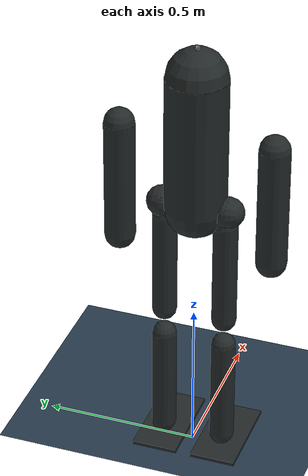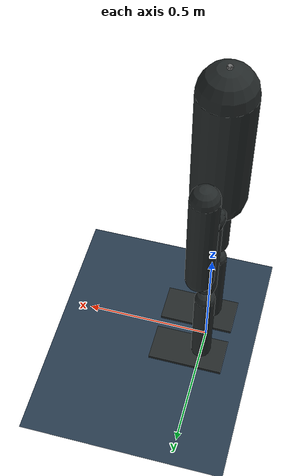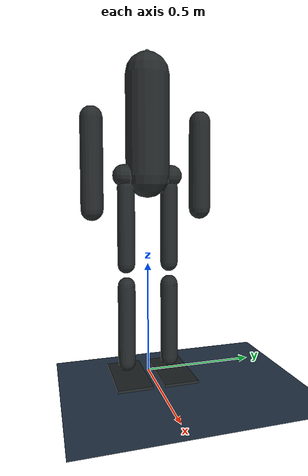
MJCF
<mujoco model="Humanoid">

	<compiler angle="radian" meshdir="../meshes" />
	<compiler inertiafromgeom = "false" angle = "radian" />
	<option timestep = "0.001" iterations = "50" tolerance = "1e-10" jacobian = "dense" cone = "pyramidal" gravity = "0.0 0.0 -9.8" solver = "Newton" impratio = "10" apirate = "144"/>
	<size nconmax = "1000" njmax = "1000" nuserdata="1000" nuser_actuator="34"/>

	<default>
		<joint limited = "true" stiffness = "1500" damping = "10" armature = "2.5"/>
		<motor ctrlrange = " -314.0 314.0" ctrllimited = "true" />
		<position kp = "15.0" />
	</default>

	<visual>
		<map force = "0.025" zfar = "30"/>
		<rgba haze = "0.15 0.25 0.35 1" com = "1.0 0.1 0.1 1"/>
		<quality shadowsize = "2048"/>
		<global offwidth = "800" offheight = "800" fovy = "45" linewidth = "0.1"/>
		<scale forcewidth = "0.05" contactwidth = "0.1" com = "0.2"/>
	</visual>

	<asset>
		<texture name = "texplane"   type = "2d" builtin = "checker" rgb1 = ".2 .3 .4" rgb2 = ".1 0.15 0.2" width = "512" height = "512" mark = "cross" markrgb = ".8 .8 .8" />
		<texture name = "texgeom" type = "cube" builtin = "flat" mark = "cross" width = "127" height = "1278" rgb1 = "0.8 0.6 0.4" rgb2 = "0.8 0.6 0.4" markrgb = "1 1 1" random = "0.01" />
		<material name = "matplane" reflectance = "0.3" texture = "texplane" texrepeat = "1 1" texuniform = "true" />
		<material name = "matgeom" texture = "texgeom" texuniform = "true" rgba = "0.8 0.6 .4 1" />
		<material name = "robots" shininess = "0.5" reflectance = "0.5" />
	</asset>

	<worldbody>
		<geom name = "floor" pos = "0 0 0" size = "0 0 .25" type = "plane" material = "matplane" solref = "0.02 0.0001" friction = "2.5 0.5 0.0001" condim = "3"/>

		<light directional = "false" diffuse = ".2 .2 .2" specular = "0 0 0" pos = "0 0 5" dir = "0 0 -1" castshadow = "false"/>
		<light mode = "targetbodycom" target = "trunk" directional = "false" diffuse = ".8 .8 .8" specular = "0.3 0.3 0.3" pos = "0 0 4.0" dir = "0 0 -1"/>

		<body name = "trunk" pos = "0 0 1.35000000">
			<inertial pos = "0 0 -0.25" mass = "24.56000000" diaginertia = "1.27690000 1.01810000 0.50336000"/>
			<freejoint name = "root"/>
			<geom name="trunk_goem" type="capsule" fromto="0 0 0 0 0 -0.45" size="0.1" rgba="0.14 0.16 0.16 1" material="robots" group="1" />
			<site name = "imu" size = "0.01" pos = "0 0 0.1"/>
			<site name = "imu_2" size = "0.01" pos = "0 0 0.1" euler = "-1.5708 0 0"/>
			<body name = "hip_right" pos = "0.00000000 -0.10000000 -0.45000000">
				<inertial pos = "0 0 0" mass = "1.00000000" diaginertia = "0.00889200 0.00802500 0.00802500"/>
				<joint name = "hip_right_x" type="hinge" pos = "0.00000000 0.00000000 0.00000000" axis = "-1 0 0" range = "-15.00000000 15.00000000"/>
				<geom name="RHipp_goem" type="capsule" fromto="0 0 0 0 -0.01 0" size="0.05" rgba="0.14 0.16 0.16 1" material="robots"  group="1" />
				<body name = "thigh_right" pos = "0.00000000 0.00000000 0.00000000">
					<inertial pos = "-0.00000000 -0.00000000 -0.21100000" mass = "3.32000000" diaginertia = "0.04289200 0.04802500 0.01078400"/>
					<joint name = "hip_right_y" type="hinge" pos = "0.00000000 0.00000000 0.00000000" axis = "0 -1 0" range = "-35.00000000 100.00000000"/>
					<geom name="Rthigh_goem" type="capsule" fromto="0 0 -0.05 0 0 -0.4" size="0.04" rgba="0.14 0.16 0.16 1" material="robots"  group="1" />
					<body name = "calf_right" pos = "0.00000000 0.00000000 -0.45000000">
						<inertial pos = "-0.00000000 -0.00000000 -0.23000000" mass = "3.30000000" diaginertia = "0.06232800 0.06266400 0.00459200"/>
						<joint name = "knee_right" type="hinge" pos = "0.00000000 0.00000000 0.00000000" axis = "0 -1 0" range = "-125.00000000 0.00000000"/>
						<geom name="Rcalf_goem" type="capsule" fromto="0 0 -0.05 0 0 -0.4" size="0.04" rgba="0.14 0.16 0.16 1" material="robots"  group="1" />
						<body name = "foot_right" pos = "0.00000000 0.00000000 -0.45000000">
							<inertial pos = "0.05 0 0" mass = "0.50000000" diaginertia = "0.00082700 0.00082700 0.00080000"/>
							<joint name = "ankle_right_y" type="hinge" pos = "-0.00000000 0.00000000 0.00000000" axis = "0 -1 0" range = "-60.00000000 56.00000000"/>
							<joint name = "ankle_right_x" type="hinge" pos = "-0.00000000 0.00000000 0.00000000" axis = "-1 0 0" range = "-15.00000000 15.00000000"/>
							<geom name = "foot_right_geom" pos = "0.05 0 0" type = "box" size = "0.1500000 0.0750000 0.01000000" rgba="0.14 0.16 0.16 1" material="robots"  group="1" />
							<site name="rf_force"  size="0.01" pos="0.0 0.0 0" />
						</body>
					</body>
				</body>
			</body>
			<body name = "hip_left" pos = "0.00000000 0.10000000 -0.45000000">
				<inertial pos = "0 0 0" mass = "1.00000000" diaginertia = "0.00889200 0.00802500 0.00802500"/>
				<joint name = "hip_left_x" type="hinge" pos = "0.00000000 0.00000000 0.00000000" axis = "-1 0 0" range = "-15.00000000 15.00000000"/>
				<geom name="LHipp_goem" type="capsule" fromto="0 0 0 0 0.01 0" size="0.05" rgba="0.14 0.16 0.16 1" material="robots"  group="1" />
				<body name = "thigh_left" pos = "0.00000000 0.00000000 0.00000000">
					<inertial pos = "-0.00000000 -0.00000000 -0.21100000" mass = "3.32000000" diaginertia = "0.04289200 0.04802500 0.01078400"/>
					<joint name = "hip_left_y" type="hinge" pos = "0.00000000 0.00000000 0.00000000" axis = "0 -1 0" range = "-35.00000000 100.00000000"/>
					<geom name="Lthigh_goem" type="capsule" fromto="0 0 -0.05 0 0 -0.4" size="0.04" rgba="0.14 0.16 0.16 1" material="robots"  group="1" />
					<body name = "calf_left" pos = "0.00000000 0.00000000 -0.45000000">
						<inertial pos = "-0.00000000 -0.00000000 -0.23000000" mass = "3.30000000" diaginertia = "0.06232800 0.06266400 0.00459200"/>
						<joint name = "knee_left" type="hinge" pos = "0.00000000 0.00000000 0.00000000" axis = "0 -1 0" range = "-125.00000000 0.00000000"/>
						<geom name="Lcalf_goem" type="capsule" fromto="0 0 -0.05 0 0 -0.4" size="0.04" rgba="0.14 0.16 0.16 1" material="robots"  group="1" />
						<body name = "foot_left" pos = "0.00000000 0.00000000 -0.45000000">
							<inertial pos = "0.05 0 0" mass = "0.50000000" diaginertia = "0.00082700 0.00082700 0.00080000"/>
							<joint name = "ankle_left_y" type="hinge" pos = "-0.00000000 0.00000000 0.00000000" axis = "0 -1 0" range = "-60.00000000 56.00000000"/>
							<joint name = "ankle_left_x" type="hinge" pos = "-0.00000000 0.00000000 0.00000000" axis = "-1 0 0" range = "-15.00000000 15.00000000"/>
							<geom name = "foot_left_geom" pos = "0.05 0 0" type = "box" size = "0.1500000 0.075000 0.01000000" rgba="0.14 0.16 0.16 1" material="robots"  group="1" />
							<site name="lf_force"  size="0.01" pos="0.0 0.0 0" />
						</body>
					</body>
				</body>
			</body>
			<body name = "arm_right" pos = "0.00000000 -0.25000000 -0.20000000">
				<joint name = "shoulder_right" type="hinge" pos = "0.00000000 0.00000000 0.00000000" axis = "0 -1 0" range = "-180.00000000 180.00000000"/>
				<inertial pos = "0 0 -0.25" mass = "2.00000000" diaginertia = "0.04912400 0.04317300 0.00663900"/>
				<geom name="Rarm_goem" type="capsule" fromto="0 0 0 0 0 -0.4" size="0.05" rgba="0.14 0.16 0.16 1" material="robots"  group="1" />
			</body>
			<body name = "arm_left" pos = "0.00000000 0.25000000 -0.20000000">
				<joint name = "shoulder_left" type="hinge" pos = "0.00000000 0.00000000 0.00000000" axis = "0 -1 0" range = "-180.00000000 180.00000000"/>
				<inertial pos = "0 0 -0.25" mass = "2.00000000" diaginertia = "0.04912400 0.04317300 0.00663900"/>
				<geom name="Larm_goem" type="capsule" fromto="0 0 0 0 0 -0.4" size="0.05" rgba="0.14 0.16 0.16 1" material="robots"  group="1" />
			</body>
		</body>
	</worldbody>

	<contact>
		<exclude body1 = "trunk" body2 = "arm_left" />
		<exclude body1 = "trunk" body2 = "arm_right" />
		<exclude body1 = "trunk" body2 = "hip_left" />
		<exclude body1 = "trunk" body2 = "thigh_left" />
		<exclude body1 = "trunk" body2 = "calf_left" />
		<exclude body1 = "trunk" body2 = "foot_left" />
		<exclude body1 = "trunk" body2 = "hip_right" />
		<exclude body1 = "trunk" body2 = "thigh_right" />
		<exclude body1 = "trunk" body2 = "calf_right" />
		<exclude body1 = "trunk" body2 = "foot_right" />
		<exclude body1 = "arm_left" body2 = "trunk" />
		<exclude body1 = "arm_left" body2 = "arm_right" />
		<exclude body1 = "arm_left" body2 = "hip_left" />
		<exclude body1 = "arm_left" body2 = "thigh_left" />
		<exclude body1 = "arm_left" body2 = "calf_left" />
		<exclude body1 = "arm_left" body2 = "foot_left" />
		<exclude body1 = "arm_left" body2 = "hip_right" />
		<exclude body1 = "arm_left" body2 = "thigh_right" />
		<exclude body1 = "arm_left" body2 = "calf_right" />
		<exclude body1 = "arm_left" body2 = "foot_right" />
		<exclude body1 = "arm_right" body2 = "trunk" />
		<exclude body1 = "arm_right" body2 = "arm_left" />
		<exclude body1 = "arm_right" body2 = "hip_left" />
		<exclude body1 = "arm_right" body2 = "thigh_left" />
		<exclude body1 = "arm_right" body2 = "calf_left" />
		<exclude body1 = "arm_right" body2 = "foot_left" />
		<exclude body1 = "arm_right" body2 = "hip_right" />
		<exclude body1 = "arm_right" body2 = "thigh_right" />
		<exclude body1 = "arm_right" body2 = "calf_right" />
		<exclude body1 = "arm_right" body2 = "foot_right" />
		<exclude body1 = "hip_left" body2 = "trunk" />
		<exclude body1 = "hip_left" body2 = "arm_left" />
		<exclude body1 = "hip_left" body2 = "arm_right" />
		<exclude body1 = "hip_left" body2 = "thigh_left" />
		<exclude body1 = "hip_left" body2 = "calf_left" />
		<exclude body1 = "hip_left" body2 = "foot_left" />
		<exclude body1 = "hip_left" body2 = "hip_right" />
		<exclude body1 = "hip_left" body2 = "thigh_right" />
		<exclude body1 = "hip_left" body2 = "calf_right" />
		<exclude body1 = "hip_left" body2 = "foot_right" />
		<exclude body1 = "thigh_left" body2 = "trunk" />
		<exclude body1 = "thigh_left" body2 = "arm_left" />
		<exclude body1 = "thigh_left" body2 = "arm_right" />
		<exclude body1 = "thigh_left" body2 = "hip_left" />
		<exclude body1 = "thigh_left" body2 = "calf_left" />
		<exclude body1 = "thigh_left" body2 = "foot_left" />
		<exclude body1 = "thigh_left" body2 = "hip_right" />
		<exclude body1 = "thigh_left" body2 = "thigh_right" />
		<exclude body1 = "thigh_left" body2 = "calf_right" />
		<exclude body1 = "thigh_left" body2 = "foot_right" />
		<exclude body1 = "calf_left" body2 = "trunk" />
		<exclude body1 = "calf_left" body2 = "arm_left" />
		<exclude body1 = "calf_left" body2 = "arm_right" />
		<exclude body1 = "calf_left" body2 = "hip_left" />
		<exclude body1 = "calf_left" body2 = "thigh_left" />
		<exclude body1 = "calf_left" body2 = "foot_left" />
		<exclude body1 = "calf_left" body2 = "hip_right" />
		<exclude body1 = "calf_left" body2 = "thigh_right" />
		<exclude body1 = "calf_left" body2 = "calf_right" />
		<exclude body1 = "calf_left" body2 = "foot_right" />
		<exclude body1 = "foot_left" body2 = "trunk" />
		<exclude body1 = "foot_left" body2 = "arm_left" />
		<exclude body1 = "foot_left" body2 = "arm_right" />
		<exclude body1 = "foot_left" body2 = "hip_left" />
		<exclude body1 = "foot_left" body2 = "thigh_left" />
		<exclude body1 = "foot_left" body2 = "calf_left" />
		<exclude body1 = "foot_left" body2 = "hip_right" />
		<exclude body1 = "foot_left" body2 = "thigh_right" />
		<exclude body1 = "foot_left" body2 = "calf_right" />
		<exclude body1 = "foot_left" body2 = "foot_right" />
		<exclude body1 = "hip_right" body2 = "trunk" />
		<exclude body1 = "hip_right" body2 = "arm_left" />
		<exclude body1 = "hip_right" body2 = "arm_right" />
		<exclude body1 = "hip_right" body2 = "hip_left" />
		<exclude body1 = "hip_right" body2 = "thigh_left" />
		<exclude body1 = "hip_right" body2 = "calf_left" />
		<exclude body1 = "hip_right" body2 = "foot_left" />
		<exclude body1 = "hip_right" body2 = "thigh_right" />
		<exclude body1 = "hip_right" body2 = "calf_right" />
		<exclude body1 = "hip_right" body2 = "foot_right" />
		<exclude body1 = "thigh_right" body2 = "trunk" />
		<exclude body1 = "thigh_right" body2 = "arm_left" />
		<exclude body1 = "thigh_right" body2 = "arm_right" />
		<exclude body1 = "thigh_right" body2 = "hip_left" />
		<exclude body1 = "thigh_right" body2 = "thigh_left" />
		<exclude body1 = "thigh_right" body2 = "calf_left" />
		<exclude body1 = "thigh_right" body2 = "foot_left" />
		<exclude body1 = "thigh_right" body2 = "hip_right" />
		<exclude body1 = "thigh_right" body2 = "calf_right" />
		<exclude body1 = "thigh_right" body2 = "foot_right" />
		<exclude body1 = "calf_right" body2 = "trunk" />
		<exclude body1 = "calf_right" body2 = "arm_left" />
		<exclude body1 = "calf_right" body2 = "arm_right" />
		<exclude body1 = "calf_right" body2 = "hip_left" />
		<exclude body1 = "calf_right" body2 = "thigh_left" />
		<exclude body1 = "calf_right" body2 = "calf_left" />
		<exclude body1 = "calf_right" body2 = "foot_left" />
		<exclude body1 = "calf_right" body2 = "hip_right" />
		<exclude body1 = "calf_right" body2 = "thigh_right" />
		<exclude body1 = "calf_right" body2 = "foot_right" />
		<exclude body1 = "foot_right" body2 = "trunk" />
		<exclude body1 = "foot_right" body2 = "arm_left" />
		<exclude body1 = "foot_right" body2 = "arm_right" />
		<exclude body1 = "foot_right" body2 = "hip_left" />
		<exclude body1 = "foot_right" body2 = "thigh_left" />
		<exclude body1 = "foot_right" body2 = "calf_left" />
		<exclude body1 = "foot_right" body2 = "foot_left" />
		<exclude body1 = "foot_right" body2 = "hip_right" />
		<exclude body1 = "foot_right" body2 = "thigh_right" />
		<exclude body1 = "foot_right" body2 = "calf_right" />
	</contact>
	<sensor>
		<force         name="rf_fsensor"    site="rf_force" />
		<torque        name="rf_tsensor"    site="rf_force" />
		<force         name="lf_fsensor"    site="lf_force" />
		<torque        name="lf_tsensor"    site="lf_force" />
		<gyro		   name="root_gyro"	  site="imu" />
		<accelerometer name="root_accel"	  site="imu" />
		<gyro		   name="root_fpos"	  site="imu"/>
		<framequat	   name="root_fquat"	  objtype="site"		objname="imu_2" />
	</sensor>

	<actuator>
		<position name="hip_left_x" gear="100.00" joint="hip_left_x" />
		<position name="hip_left_y" gear="100.00" joint="hip_left_y" />
		<position name="knee_left" gear="100.00" joint="knee_left" />
		<position name="ankle_left_y" gear="100.00" joint="ankle_left_y" />
		<position name="ankle_left_x" gear="100.00" joint="ankle_left_x" />
		<position name="hip_right_x" gear="100.00" joint="hip_right_x" />
		<position name="hip_right_y" gear="100.00" joint="hip_right_y" />
		<position name="knee_right" gear="100.00" joint="knee_right" />
		<position name="ankle_right_y" gear="100.00" joint="ankle_right_y" />
		<position name="ankle_right_x" gear="100.00" joint="ankle_right_x" />
		<position name="shoulder_left" gear="100.00" joint = "shoulder_left" />
		<position name="shoulder_right" gear="100.00" joint="shoulder_right" />
	</actuator>

</mujoco>
